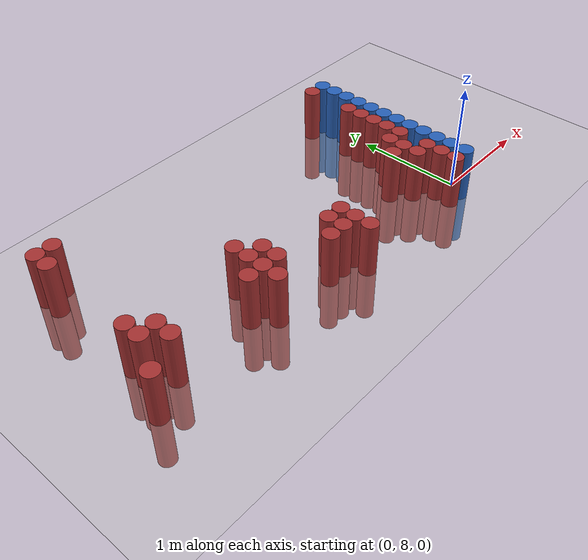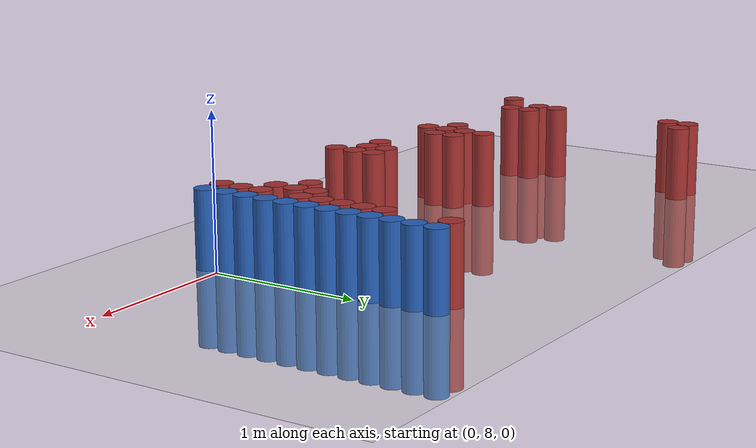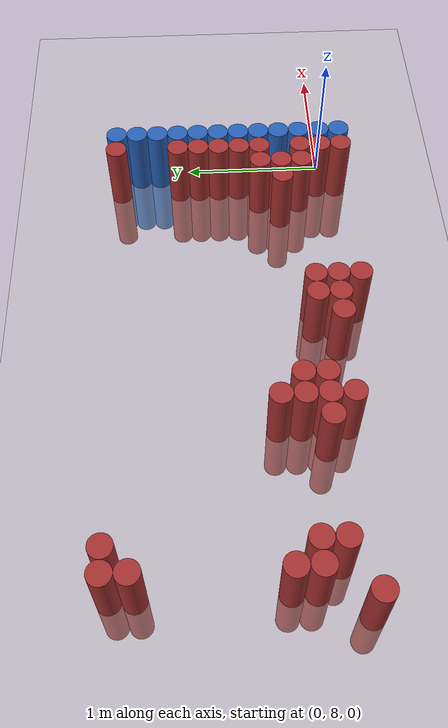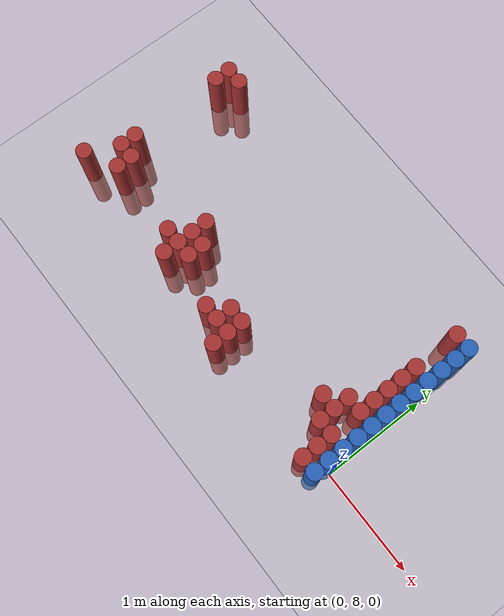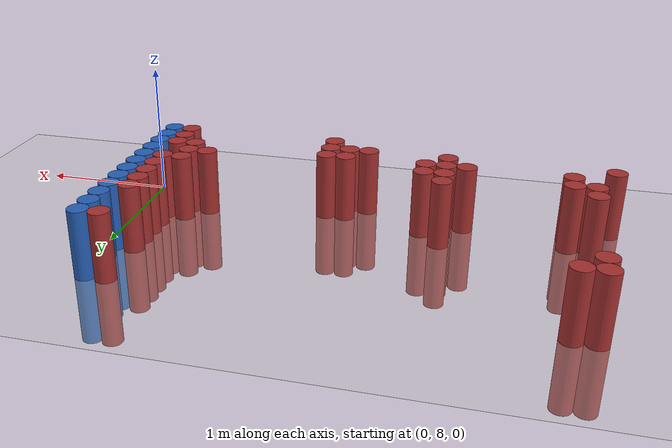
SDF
<sdf version="1.6">
 <world name="default">
  <model name="ground_plane">
   <static>1</static>
   <link name="link">
    <collision name="collision">
     <geometry><plane><normal>0 0 1</normal><size>100 100</size></plane></geometry>
     <surface><friction><ode><mu>100</mu><mu2>50</mu2></ode></friction></surface>
    </collision>
    <visual name="visual">
     <cast_shadows>0</cast_shadows>
     <geometry><plane><normal>0 0 1</normal><size>100 100</size></plane></geometry>
     <material>
      <script><uri>file://media/materials/scripts/gazebo.material</uri><name>Gazebo/Grey</name></script>
     </material>
    </visual>
   </link>
  </model>
  <model name="unit_cylinder_158">
   <static>1</static>
   <pose>-3.525000 8.025000 0.000000 0.000000 0.000000 0.000000</pose>
   <link name="link">
    <inertial>
     <mass>1</mass>
     <inertia><ixx>0.145833</ixx><ixy>0</ixy><ixz>0</ixz><iyy>0.145833</iyy><iyz>0</iyz><izz>0.125</izz></inertia>
    </inertial>
    <collision name="collision">
     <geometry><cylinder><radius>0.075000</radius><length>1</length></cylinder></geometry>
    </collision>
    <visual name="visual">
     <geometry><cylinder><radius>0.075000</radius><length>1</length></cylinder></geometry>
     <material>
      <ambient>0.648000 0.192000 0.192000 1</ambient>
      <diffuse>0.648000 0.192000 0.192000 1</diffuse>
     </material>
     <material>
      <script><name>Gazebo/Grey</name><uri>file://media/materials/scripts/gazebo.material</uri></script>
     </material>
    </visual>
   </link>
  </model>
  <model name="unit_cylinder_160">
   <static>1</static>
   <pose>-3.375000 8.325000 0.000000 0.000000 0.000000 0.000000</pose>
   <link name="link">
    <inertial>
     <mass>1</mass>
     <inertia><ixx>0.145833</ixx><ixy>0</ixy><ixz>0</ixz><iyy>0.145833</iyy><iyz>0</iyz><izz>0.125</izz></inertia>
    </inertial>
    <collision name="collision">
     <geometry><cylinder><radius>0.075000</radius><length>1</length></cylinder></geometry>
    </collision>
    <visual name="visual">
     <geometry><cylinder><radius>0.075000</radius><length>1</length></cylinder></geometry>
     <material>
      <ambient>0.648000 0.192000 0.192000 1</ambient>
      <diffuse>0.648000 0.192000 0.192000 1</diffuse>
     </material>
     <material>
      <script><name>Gazebo/Grey</name><uri>file://media/materials/scripts/gazebo.material</uri></script>
     </material>
    </visual>
   </link>
  </model>
  <model name="unit_cylinder_161">
   <static>1</static>
   <pose>-3.375000 8.475000 0.000000 0.000000 0.000000 0.000000</pose>
   <link name="link">
    <inertial>
     <mass>1</mass>
     <inertia><ixx>0.145833</ixx><ixy>0</ixy><ixz>0</ixz><iyy>0.145833</iyy><iyz>0</iyz><izz>0.125</izz></inertia>
    </inertial>
    <collision name="collision">
     <geometry><cylinder><radius>0.075000</radius><length>1</length></cylinder></geometry>
    </collision>
    <visual name="visual">
     <geometry><cylinder><radius>0.075000</radius><length>1</length></cylinder></geometry>
     <material>
      <ambient>0.648000 0.192000 0.192000 1</ambient>
      <diffuse>0.648000 0.192000 0.192000 1</diffuse>
     </material>
     <material>
      <script><name>Gazebo/Grey</name><uri>file://media/materials/scripts/gazebo.material</uri></script>
     </material>
    </visual>
   </link>
  </model>
  <model name="unit_cylinder_162">
   <static>1</static>
   <pose>-3.375000 9.375000 0.000000 0.000000 0.000000 0.000000</pose>
   <link name="link">
    <inertial>
     <mass>1</mass>
     <inertia><ixx>0.145833</ixx><ixy>0</ixy><ixz>0</ixz><iyy>0.145833</iyy><iyz>0</iyz><izz>0.125</izz></inertia>
    </inertial>
    <collision name="collision">
     <geometry><cylinder><radius>0.075000</radius><length>1</length></cylinder></geometry>
    </collision>
    <visual name="visual">
     <geometry><cylinder><radius>0.075000</radius><length>1</length></cylinder></geometry>
     <material>
      <ambient>0.648000 0.192000 0.192000 1</ambient>
      <diffuse>0.648000 0.192000 0.192000 1</diffuse>
     </material>
     <material>
      <script><name>Gazebo/Grey</name><uri>file://media/materials/scripts/gazebo.material</uri></script>
     </material>
    </visual>
   </link>
  </model>
  <model name="unit_cylinder_163">
   <static>1</static>
   <pose>-3.375000 9.525000 0.000000 0.000000 0.000000 0.000000</pose>
   <link name="link">
    <inertial>
     <mass>1</mass>
     <inertia><ixx>0.145833</ixx><ixy>0</ixy><ixz>0</ixz><iyy>0.145833</iyy><iyz>0</iyz><izz>0.125</izz></inertia>
    </inertial>
    <collision name="collision">
     <geometry><cylinder><radius>0.075000</radius><length>1</length></cylinder></geometry>
    </collision>
    <visual name="visual">
     <geometry><cylinder><radius>0.075000</radius><length>1</length></cylinder></geometry>
     <material>
      <ambient>0.648000 0.192000 0.192000 1</ambient>
      <diffuse>0.648000 0.192000 0.192000 1</diffuse>
     </material>
     <material>
      <script><name>Gazebo/Grey</name><uri>file://media/materials/scripts/gazebo.material</uri></script>
     </material>
    </visual>
   </link>
  </model>
  <model name="unit_cylinder_165">
   <static>1</static>
   <pose>-3.225000 8.175000 0.000000 0.000000 0.000000 0.000000</pose>
   <link name="link">
    <inertial>
     <mass>1</mass>
     <inertia><ixx>0.145833</ixx><ixy>0</ixy><ixz>0</ixz><iyy>0.145833</iyy><iyz>0</iyz><izz>0.125</izz></inertia>
    </inertial>
    <collision name="collision">
     <geometry><cylinder><radius>0.075000</radius><length>1</length></cylinder></geometry>
    </collision>
    <visual name="visual">
     <geometry><cylinder><radius>0.075000</radius><length>1</length></cylinder></geometry>
     <material>
      <ambient>0.648000 0.192000 0.192000 1</ambient>
      <diffuse>0.648000 0.192000 0.192000 1</diffuse>
     </material>
     <material>
      <script><name>Gazebo/Grey</name><uri>file://media/materials/scripts/gazebo.material</uri></script>
     </material>
    </visual>
   </link>
  </model>
  <model name="unit_cylinder_166">
   <static>1</static>
   <pose>-3.225000 8.325000 0.000000 0.000000 0.000000 0.000000</pose>
   <link name="link">
    <inertial>
     <mass>1</mass>
     <inertia><ixx>0.145833</ixx><ixy>0</ixy><ixz>0</ixz><iyy>0.145833</iyy><iyz>0</iyz><izz>0.125</izz></inertia>
    </inertial>
    <collision name="collision">
     <geometry><cylinder><radius>0.075000</radius><length>1</length></cylinder></geometry>
    </collision>
    <visual name="visual">
     <geometry><cylinder><radius>0.075000</radius><length>1</length></cylinder></geometry>
     <material>
      <ambient>0.648000 0.192000 0.192000 1</ambient>
      <diffuse>0.648000 0.192000 0.192000 1</diffuse>
     </material>
     <material>
      <script><name>Gazebo/Grey</name><uri>file://media/materials/scripts/gazebo.material</uri></script>
     </material>
    </visual>
   </link>
  </model>
  <model name="unit_cylinder_167">
   <static>1</static>
   <pose>-3.225000 9.525000 0.000000 0.000000 0.000000 0.000000</pose>
   <link name="link">
    <inertial>
     <mass>1</mass>
     <inertia><ixx>0.145833</ixx><ixy>0</ixy><ixz>0</ixz><iyy>0.145833</iyy><iyz>0</iyz><izz>0.125</izz></inertia>
    </inertial>
    <collision name="collision">
     <geometry><cylinder><radius>0.075000</radius><length>1</length></cylinder></geometry>
    </collision>
    <visual name="visual">
     <geometry><cylinder><radius>0.075000</radius><length>1</length></cylinder></geometry>
     <material>
      <ambient>0.648000 0.192000 0.192000 1</ambient>
      <diffuse>0.648000 0.192000 0.192000 1</diffuse>
     </material>
     <material>
      <script><name>Gazebo/Grey</name><uri>file://media/materials/scripts/gazebo.material</uri></script>
     </material>
    </visual>
   </link>
  </model>
  <model name="unit_cylinder_179">
   <static>1</static>
   <pose>-2.475000 8.175000 0.000000 0.000000 0.000000 0.000000</pose>
   <link name="link">
    <inertial>
     <mass>1</mass>
     <inertia><ixx>0.145833</ixx><ixy>0</ixy><ixz>0</ixz><iyy>0.145833</iyy><iyz>0</iyz><izz>0.125</izz></inertia>
    </inertial>
    <collision name="collision">
     <geometry><cylinder><radius>0.075000</radius><length>1</length></cylinder></geometry>
    </collision>
    <visual name="visual">
     <geometry><cylinder><radius>0.075000</radius><length>1</length></cylinder></geometry>
     <material>
      <ambient>0.648000 0.192000 0.192000 1</ambient>
      <diffuse>0.648000 0.192000 0.192000 1</diffuse>
     </material>
     <material>
      <script><name>Gazebo/Grey</name><uri>file://media/materials/scripts/gazebo.material</uri></script>
     </material>
    </visual>
   </link>
  </model>
  <model name="unit_cylinder_182">
   <static>1</static>
   <pose>-2.325000 8.025000 0.000000 0.000000 0.000000 0.000000</pose>
   <link name="link">
    <inertial>
     <mass>1</mass>
     <inertia><ixx>0.145833</ixx><ixy>0</ixy><ixz>0</ixz><iyy>0.145833</iyy><iyz>0</iyz><izz>0.125</izz></inertia>
    </inertial>
    <collision name="collision">
     <geometry><cylinder><radius>0.075000</radius><length>1</length></cylinder></geometry>
    </collision>
    <visual name="visual">
     <geometry><cylinder><radius>0.075000</radius><length>1</length></cylinder></geometry>
     <material>
      <ambient>0.648000 0.192000 0.192000 1</ambient>
      <diffuse>0.648000 0.192000 0.192000 1</diffuse>
     </material>
     <material>
      <script><name>Gazebo/Grey</name><uri>file://media/materials/scripts/gazebo.material</uri></script>
     </material>
    </visual>
   </link>
  </model>
  <model name="unit_cylinder_183">
   <static>1</static>
   <pose>-2.325000 8.175000 0.000000 0.000000 0.000000 0.000000</pose>
   <link name="link">
    <inertial>
     <mass>1</mass>
     <inertia><ixx>0.145833</ixx><ixy>0</ixy><ixz>0</ixz><iyy>0.145833</iyy><iyz>0</iyz><izz>0.125</izz></inertia>
    </inertial>
    <collision name="collision">
     <geometry><cylinder><radius>0.075000</radius><length>1</length></cylinder></geometry>
    </collision>
    <visual name="visual">
     <geometry><cylinder><radius>0.075000</radius><length>1</length></cylinder></geometry>
     <material>
      <ambient>0.648000 0.192000 0.192000 1</ambient>
      <diffuse>0.648000 0.192000 0.192000 1</diffuse>
     </material>
     <material>
      <script><name>Gazebo/Grey</name><uri>file://media/materials/scripts/gazebo.material</uri></script>
     </material>
    </visual>
   </link>
  </model>
  <model name="unit_cylinder_184">
   <static>1</static>
   <pose>-2.325000 8.325000 0.000000 0.000000 0.000000 0.000000</pose>
   <link name="link">
    <inertial>
     <mass>1</mass>
     <inertia><ixx>0.145833</ixx><ixy>0</ixy><ixz>0</ixz><iyy>0.145833</iyy><iyz>0</iyz><izz>0.125</izz></inertia>
    </inertial>
    <collision name="collision">
     <geometry><cylinder><radius>0.075000</radius><length>1</length></cylinder></geometry>
    </collision>
    <visual name="visual">
     <geometry><cylinder><radius>0.075000</radius><length>1</length></cylinder></geometry>
     <material>
      <ambient>0.648000 0.192000 0.192000 1</ambient>
      <diffuse>0.648000 0.192000 0.192000 1</diffuse>
     </material>
     <material>
      <script><name>Gazebo/Grey</name><uri>file://media/materials/scripts/gazebo.material</uri></script>
     </material>
    </visual>
   </link>
  </model>
  <model name="unit_cylinder_185">
   <static>1</static>
   <pose>-2.325000 8.475000 0.000000 0.000000 0.000000 0.000000</pose>
   <link name="link">
    <inertial>
     <mass>1</mass>
     <inertia><ixx>0.145833</ixx><ixy>0</ixy><ixz>0</ixz><iyy>0.145833</iyy><iyz>0</iyz><izz>0.125</izz></inertia>
    </inertial>
    <collision name="collision">
     <geometry><cylinder><radius>0.075000</radius><length>1</length></cylinder></geometry>
    </collision>
    <visual name="visual">
     <geometry><cylinder><radius>0.075000</radius><length>1</length></cylinder></geometry>
     <material>
      <ambient>0.648000 0.192000 0.192000 1</ambient>
      <diffuse>0.648000 0.192000 0.192000 1</diffuse>
     </material>
     <material>
      <script><name>Gazebo/Grey</name><uri>file://media/materials/scripts/gazebo.material</uri></script>
     </material>
    </visual>
   </link>
  </model>
  <model name="unit_cylinder_188">
   <static>1</static>
   <pose>-2.175000 8.175000 0.000000 0.000000 0.000000 0.000000</pose>
   <link name="link">
    <inertial>
     <mass>1</mass>
     <inertia><ixx>0.145833</ixx><ixy>0</ixy><ixz>0</ixz><iyy>0.145833</iyy><iyz>0</iyz><izz>0.125</izz></inertia>
    </inertial>
    <collision name="collision">
     <geometry><cylinder><radius>0.075000</radius><length>1</length></cylinder></geometry>
    </collision>
    <visual name="visual">
     <geometry><cylinder><radius>0.075000</radius><length>1</length></cylinder></geometry>
     <material>
      <ambient>0.648000 0.192000 0.192000 1</ambient>
      <diffuse>0.648000 0.192000 0.192000 1</diffuse>
     </material>
     <material>
      <script><name>Gazebo/Grey</name><uri>file://media/materials/scripts/gazebo.material</uri></script>
     </material>
    </visual>
   </link>
  </model>
  <model name="unit_cylinder_189">
   <static>1</static>
   <pose>-2.175000 8.325000 0.000000 0.000000 0.000000 0.000000</pose>
   <link name="link">
    <inertial>
     <mass>1</mass>
     <inertia><ixx>0.145833</ixx><ixy>0</ixy><ixz>0</ixz><iyy>0.145833</iyy><iyz>0</iyz><izz>0.125</izz></inertia>
    </inertial>
    <collision name="collision">
     <geometry><cylinder><radius>0.075000</radius><length>1</length></cylinder></geometry>
    </collision>
    <visual name="visual">
     <geometry><cylinder><radius>0.075000</radius><length>1</length></cylinder></geometry>
     <material>
      <ambient>0.648000 0.192000 0.192000 1</ambient>
      <diffuse>0.648000 0.192000 0.192000 1</diffuse>
     </material>
     <material>
      <script><name>Gazebo/Grey</name><uri>file://media/materials/scripts/gazebo.material</uri></script>
     </material>
    </visual>
   </link>
  </model>
  <model name="unit_cylinder_203">
   <static>1</static>
   <pose>-1.725000 8.025000 0.000000 0.000000 0.000000 0.000000</pose>
   <link name="link">
    <inertial>
     <mass>1</mass>
     <inertia><ixx>0.145833</ixx><ixy>0</ixy><ixz>0</ixz><iyy>0.145833</iyy><iyz>0</iyz><izz>0.125</izz></inertia>
    </inertial>
    <collision name="collision">
     <geometry><cylinder><radius>0.075000</radius><length>1</length></cylinder></geometry>
    </collision>
    <visual name="visual">
     <geometry><cylinder><radius>0.075000</radius><length>1</length></cylinder></geometry>
     <material>
      <ambient>0.648000 0.192000 0.192000 1</ambient>
      <diffuse>0.648000 0.192000 0.192000 1</diffuse>
     </material>
     <material>
      <script><name>Gazebo/Grey</name><uri>file://media/materials/scripts/gazebo.material</uri></script>
     </material>
    </visual>
   </link>
  </model>
  <model name="unit_cylinder_207">
   <static>1</static>
   <pose>-1.575000 8.025000 0.000000 0.000000 0.000000 0.000000</pose>
   <link name="link">
    <inertial>
     <mass>1</mass>
     <inertia><ixx>0.145833</ixx><ixy>0</ixy><ixz>0</ixz><iyy>0.145833</iyy><iyz>0</iyz><izz>0.125</izz></inertia>
    </inertial>
    <collision name="collision">
     <geometry><cylinder><radius>0.075000</radius><length>1</length></cylinder></geometry>
    </collision>
    <visual name="visual">
     <geometry><cylinder><radius>0.075000</radius><length>1</length></cylinder></geometry>
     <material>
      <ambient>0.648000 0.192000 0.192000 1</ambient>
      <diffuse>0.648000 0.192000 0.192000 1</diffuse>
     </material>
     <material>
      <script><name>Gazebo/Grey</name><uri>file://media/materials/scripts/gazebo.material</uri></script>
     </material>
    </visual>
   </link>
  </model>
  <model name="unit_cylinder_208">
   <static>1</static>
   <pose>-1.575000 8.175000 0.000000 0.000000 0.000000 0.000000</pose>
   <link name="link">
    <inertial>
     <mass>1</mass>
     <inertia><ixx>0.145833</ixx><ixy>0</ixy><ixz>0</ixz><iyy>0.145833</iyy><iyz>0</iyz><izz>0.125</izz></inertia>
    </inertial>
    <collision name="collision">
     <geometry><cylinder><radius>0.075000</radius><length>1</length></cylinder></geometry>
    </collision>
    <visual name="visual">
     <geometry><cylinder><radius>0.075000</radius><length>1</length></cylinder></geometry>
     <material>
      <ambient>0.648000 0.192000 0.192000 1</ambient>
      <diffuse>0.648000 0.192000 0.192000 1</diffuse>
     </material>
     <material>
      <script><name>Gazebo/Grey</name><uri>file://media/materials/scripts/gazebo.material</uri></script>
     </material>
    </visual>
   </link>
  </model>
  <model name="unit_cylinder_209">
   <static>1</static>
   <pose>-1.425000 7.875000 0.000000 0.000000 0.000000 0.000000</pose>
   <link name="link">
    <inertial>
     <mass>1</mass>
     <inertia><ixx>0.145833</ixx><ixy>0</ixy><ixz>0</ixz><iyy>0.145833</iyy><iyz>0</iyz><izz>0.125</izz></inertia>
    </inertial>
    <collision name="collision">
     <geometry><cylinder><radius>0.075000</radius><length>1</length></cylinder></geometry>
    </collision>
    <visual name="visual">
     <geometry><cylinder><radius>0.075000</radius><length>1</length></cylinder></geometry>
     <material>
      <ambient>0.648000 0.192000 0.192000 1</ambient>
      <diffuse>0.648000 0.192000 0.192000 1</diffuse>
     </material>
     <material>
      <script><name>Gazebo/Grey</name><uri>file://media/materials/scripts/gazebo.material</uri></script>
     </material>
    </visual>
   </link>
  </model>
  <model name="unit_cylinder_210">
   <static>1</static>
   <pose>-1.425000 8.025000 0.000000 0.000000 0.000000 0.000000</pose>
   <link name="link">
    <inertial>
     <mass>1</mass>
     <inertia><ixx>0.145833</ixx><ixy>0</ixy><ixz>0</ixz><iyy>0.145833</iyy><iyz>0</iyz><izz>0.125</izz></inertia>
    </inertial>
    <collision name="collision">
     <geometry><cylinder><radius>0.075000</radius><length>1</length></cylinder></geometry>
    </collision>
    <visual name="visual">
     <geometry><cylinder><radius>0.075000</radius><length>1</length></cylinder></geometry>
     <material>
      <ambient>0.648000 0.192000 0.192000 1</ambient>
      <diffuse>0.648000 0.192000 0.192000 1</diffuse>
     </material>
     <material>
      <script><name>Gazebo/Grey</name><uri>file://media/materials/scripts/gazebo.material</uri></script>
     </material>
    </visual>
   </link>
  </model>
  <model name="unit_cylinder_211">
   <static>1</static>
   <pose>-1.425000 8.175000 0.000000 0.000000 0.000000 0.000000</pose>
   <link name="link">
    <inertial>
     <mass>1</mass>
     <inertia><ixx>0.145833</ixx><ixy>0</ixy><ixz>0</ixz><iyy>0.145833</iyy><iyz>0</iyz><izz>0.125</izz></inertia>
    </inertial>
    <collision name="collision">
     <geometry><cylinder><radius>0.075000</radius><length>1</length></cylinder></geometry>
    </collision>
    <visual name="visual">
     <geometry><cylinder><radius>0.075000</radius><length>1</length></cylinder></geometry>
     <material>
      <ambient>0.648000 0.192000 0.192000 1</ambient>
      <diffuse>0.648000 0.192000 0.192000 1</diffuse>
     </material>
     <material>
      <script><name>Gazebo/Grey</name><uri>file://media/materials/scripts/gazebo.material</uri></script>
     </material>
    </visual>
   </link>
  </model>
  <model name="unit_cylinder_222">
   <static>1</static>
   <pose>-0.525000 8.325000 0.000000 0.000000 0.000000 0.000000</pose>
   <link name="link">
    <inertial>
     <mass>1</mass>
     <inertia><ixx>0.145833</ixx><ixy>0</ixy><ixz>0</ixz><iyy>0.145833</iyy><iyz>0</iyz><izz>0.125</izz></inertia>
    </inertial>
    <collision name="collision">
     <geometry><cylinder><radius>0.075000</radius><length>1</length></cylinder></geometry>
    </collision>
    <visual name="visual">
     <geometry><cylinder><radius>0.075000</radius><length>1</length></cylinder></geometry>
     <material>
      <ambient>0.648000 0.192000 0.192000 1</ambient>
      <diffuse>0.648000 0.192000 0.192000 1</diffuse>
     </material>
     <material>
      <script><name>Gazebo/Grey</name><uri>file://media/materials/scripts/gazebo.material</uri></script>
     </material>
    </visual>
   </link>
  </model>
  <model name="unit_cylinder_230">
   <static>1</static>
   <pose>-0.375000 8.175000 0.000000 0.000000 0.000000 0.000000</pose>
   <link name="link">
    <inertial>
     <mass>1</mass>
     <inertia><ixx>0.145833</ixx><ixy>0</ixy><ixz>0</ixz><iyy>0.145833</iyy><iyz>0</iyz><izz>0.125</izz></inertia>
    </inertial>
    <collision name="collision">
     <geometry><cylinder><radius>0.075000</radius><length>1</length></cylinder></geometry>
    </collision>
    <visual name="visual">
     <geometry><cylinder><radius>0.075000</radius><length>1</length></cylinder></geometry>
     <material>
      <ambient>0.648000 0.192000 0.192000 1</ambient>
      <diffuse>0.648000 0.192000 0.192000 1</diffuse>
     </material>
     <material>
      <script><name>Gazebo/Grey</name><uri>file://media/materials/scripts/gazebo.material</uri></script>
     </material>
    </visual>
   </link>
  </model>
  <model name="unit_cylinder_231">
   <static>1</static>
   <pose>-0.375000 8.325000 0.000000 0.000000 0.000000 0.000000</pose>
   <link name="link">
    <inertial>
     <mass>1</mass>
     <inertia><ixx>0.145833</ixx><ixy>0</ixy><ixz>0</ixz><iyy>0.145833</iyy><iyz>0</iyz><izz>0.125</izz></inertia>
    </inertial>
    <collision name="collision">
     <geometry><cylinder><radius>0.075000</radius><length>1</length></cylinder></geometry>
    </collision>
    <visual name="visual">
     <geometry><cylinder><radius>0.075000</radius><length>1</length></cylinder></geometry>
     <material>
      <ambient>0.648000 0.192000 0.192000 1</ambient>
      <diffuse>0.648000 0.192000 0.192000 1</diffuse>
     </material>
     <material>
      <script><name>Gazebo/Grey</name><uri>file://media/materials/scripts/gazebo.material</uri></script>
     </material>
    </visual>
   </link>
  </model>
  <model name="unit_cylinder_232">
   <static>1</static>
   <pose>-0.375000 8.475000 0.000000 0.000000 0.000000 0.000000</pose>
   <link name="link">
    <inertial>
     <mass>1</mass>
     <inertia><ixx>0.145833</ixx><ixy>0</ixy><ixz>0</ixz><iyy>0.145833</iyy><iyz>0</iyz><izz>0.125</izz></inertia>
    </inertial>
    <collision name="collision">
     <geometry><cylinder><radius>0.075000</radius><length>1</length></cylinder></geometry>
    </collision>
    <visual name="visual">
     <geometry><cylinder><radius>0.075000</radius><length>1</length></cylinder></geometry>
     <material>
      <ambient>0.648000 0.192000 0.192000 1</ambient>
      <diffuse>0.648000 0.192000 0.192000 1</diffuse>
     </material>
     <material>
      <script><name>Gazebo/Grey</name><uri>file://media/materials/scripts/gazebo.material</uri></script>
     </material>
    </visual>
   </link>
  </model>
  <model name="unit_cylinder_238">
   <static>1</static>
   <pose>-0.225000 7.875000 0.000000 0.000000 0.000000 0.000000</pose>
   <link name="link">
    <inertial>
     <mass>1</mass>
     <inertia><ixx>0.145833</ixx><ixy>0</ixy><ixz>0</ixz><iyy>0.145833</iyy><iyz>0</iyz><izz>0.125</izz></inertia>
    </inertial>
    <collision name="collision">
     <geometry><cylinder><radius>0.075000</radius><length>1</length></cylinder></geometry>
    </collision>
    <visual name="visual">
     <geometry><cylinder><radius>0.075000</radius><length>1</length></cylinder></geometry>
     <material>
      <ambient>0.648000 0.192000 0.192000 1</ambient>
      <diffuse>0.648000 0.192000 0.192000 1</diffuse>
     </material>
     <material>
      <script><name>Gazebo/Grey</name><uri>file://media/materials/scripts/gazebo.material</uri></script>
     </material>
    </visual>
   </link>
  </model>
  <model name="unit_cylinder_239">
   <static>1</static>
   <pose>-0.225000 8.025000 0.000000 0.000000 0.000000 0.000000</pose>
   <link name="link">
    <inertial>
     <mass>1</mass>
     <inertia><ixx>0.145833</ixx><ixy>0</ixy><ixz>0</ixz><iyy>0.145833</iyy><iyz>0</iyz><izz>0.125</izz></inertia>
    </inertial>
    <collision name="collision">
     <geometry><cylinder><radius>0.075000</radius><length>1</length></cylinder></geometry>
    </collision>
    <visual name="visual">
     <geometry><cylinder><radius>0.075000</radius><length>1</length></cylinder></geometry>
     <material>
      <ambient>0.648000 0.192000 0.192000 1</ambient>
      <diffuse>0.648000 0.192000 0.192000 1</diffuse>
     </material>
     <material>
      <script><name>Gazebo/Grey</name><uri>file://media/materials/scripts/gazebo.material</uri></script>
     </material>
    </visual>
   </link>
  </model>
  <model name="unit_cylinder_240">
   <static>1</static>
   <pose>-0.225000 8.175000 0.000000 0.000000 0.000000 0.000000</pose>
   <link name="link">
    <inertial>
     <mass>1</mass>
     <inertia><ixx>0.145833</ixx><ixy>0</ixy><ixz>0</ixz><iyy>0.145833</iyy><iyz>0</iyz><izz>0.125</izz></inertia>
    </inertial>
    <collision name="collision">
     <geometry><cylinder><radius>0.075000</radius><length>1</length></cylinder></geometry>
    </collision>
    <visual name="visual">
     <geometry><cylinder><radius>0.075000</radius><length>1</length></cylinder></geometry>
     <material>
      <ambient>0.648000 0.192000 0.192000 1</ambient>
      <diffuse>0.648000 0.192000 0.192000 1</diffuse>
     </material>
     <material>
      <script><name>Gazebo/Grey</name><uri>file://media/materials/scripts/gazebo.material</uri></script>
     </material>
    </visual>
   </link>
  </model>
  <model name="unit_cylinder_241">
   <static>1</static>
   <pose>-0.225000 8.475000 0.000000 0.000000 0.000000 0.000000</pose>
   <link name="link">
    <inertial>
     <mass>1</mass>
     <inertia><ixx>0.145833</ixx><ixy>0</ixy><ixz>0</ixz><iyy>0.145833</iyy><iyz>0</iyz><izz>0.125</izz></inertia>
    </inertial>
    <collision name="collision">
     <geometry><cylinder><radius>0.075000</radius><length>1</length></cylinder></geometry>
    </collision>
    <visual name="visual">
     <geometry><cylinder><radius>0.075000</radius><length>1</length></cylinder></geometry>
     <material>
      <ambient>0.648000 0.192000 0.192000 1</ambient>
      <diffuse>0.648000 0.192000 0.192000 1</diffuse>
     </material>
     <material>
      <script><name>Gazebo/Grey</name><uri>file://media/materials/scripts/gazebo.material</uri></script>
     </material>
    </visual>
   </link>
  </model>
  <model name="unit_cylinder_242">
   <static>1</static>
   <pose>-0.225000 8.625000 0.000000 0.000000 0.000000 0.000000</pose>
   <link name="link">
    <inertial>
     <mass>1</mass>
     <inertia><ixx>0.145833</ixx><ixy>0</ixy><ixz>0</ixz><iyy>0.145833</iyy><iyz>0</iyz><izz>0.125</izz></inertia>
    </inertial>
    <collision name="collision">
     <geometry><cylinder><radius>0.075000</radius><length>1</length></cylinder></geometry>
    </collision>
    <visual name="visual">
     <geometry><cylinder><radius>0.075000</radius><length>1</length></cylinder></geometry>
     <material>
      <ambient>0.648000 0.192000 0.192000 1</ambient>
      <diffuse>0.648000 0.192000 0.192000 1</diffuse>
     </material>
     <material>
      <script><name>Gazebo/Grey</name><uri>file://media/materials/scripts/gazebo.material</uri></script>
     </material>
    </visual>
   </link>
  </model>
  <model name="unit_cylinder_243">
   <static>1</static>
   <pose>-0.225000 8.775000 0.000000 0.000000 0.000000 0.000000</pose>
   <link name="link">
    <inertial>
     <mass>1</mass>
     <inertia><ixx>0.145833</ixx><ixy>0</ixy><ixz>0</ixz><iyy>0.145833</iyy><iyz>0</iyz><izz>0.125</izz></inertia>
    </inertial>
    <collision name="collision">
     <geometry><cylinder><radius>0.075000</radius><length>1</length></cylinder></geometry>
    </collision>
    <visual name="visual">
     <geometry><cylinder><radius>0.075000</radius><length>1</length></cylinder></geometry>
     <material>
      <ambient>0.648000 0.192000 0.192000 1</ambient>
      <diffuse>0.648000 0.192000 0.192000 1</diffuse>
     </material>
     <material>
      <script><name>Gazebo/Grey</name><uri>file://media/materials/scripts/gazebo.material</uri></script>
     </material>
    </visual>
   </link>
  </model>
  <model name="unit_cylinder_244">
   <static>1</static>
   <pose>-0.225000 8.925000 0.000000 0.000000 0.000000 0.000000</pose>
   <link name="link">
    <inertial>
     <mass>1</mass>
     <inertia><ixx>0.145833</ixx><ixy>0</ixy><ixz>0</ixz><iyy>0.145833</iyy><iyz>0</iyz><izz>0.125</izz></inertia>
    </inertial>
    <collision name="collision">
     <geometry><cylinder><radius>0.075000</radius><length>1</length></cylinder></geometry>
    </collision>
    <visual name="visual">
     <geometry><cylinder><radius>0.075000</radius><length>1</length></cylinder></geometry>
     <material>
      <ambient>0.648000 0.192000 0.192000 1</ambient>
      <diffuse>0.648000 0.192000 0.192000 1</diffuse>
     </material>
     <material>
      <script><name>Gazebo/Grey</name><uri>file://media/materials/scripts/gazebo.material</uri></script>
     </material>
    </visual>
   </link>
  </model>
  <model name="unit_cylinder_245">
   <static>1</static>
   <pose>-0.225000 9.075000 0.000000 0.000000 0.000000 0.000000</pose>
   <link name="link">
    <inertial>
     <mass>1</mass>
     <inertia><ixx>0.145833</ixx><ixy>0</ixy><ixz>0</ixz><iyy>0.145833</iyy><iyz>0</iyz><izz>0.125</izz></inertia>
    </inertial>
    <collision name="collision">
     <geometry><cylinder><radius>0.075000</radius><length>1</length></cylinder></geometry>
    </collision>
    <visual name="visual">
     <geometry><cylinder><radius>0.075000</radius><length>1</length></cylinder></geometry>
     <material>
      <ambient>0.648000 0.192000 0.192000 1</ambient>
      <diffuse>0.648000 0.192000 0.192000 1</diffuse>
     </material>
     <material>
      <script><name>Gazebo/Grey</name><uri>file://media/materials/scripts/gazebo.material</uri></script>
     </material>
    </visual>
   </link>
  </model>
  <model name="unit_cylinder_246">
   <static>1</static>
   <pose>-0.225000 9.525000 0.000000 0.000000 0.000000 0.000000</pose>
   <link name="link">
    <inertial>
     <mass>1</mass>
     <inertia><ixx>0.145833</ixx><ixy>0</ixy><ixz>0</ixz><iyy>0.145833</iyy><iyz>0</iyz><izz>0.125</izz></inertia>
    </inertial>
    <collision name="collision">
     <geometry><cylinder><radius>0.075000</radius><length>1</length></cylinder></geometry>
    </collision>
    <visual name="visual">
     <geometry><cylinder><radius>0.075000</radius><length>1</length></cylinder></geometry>
     <material>
      <ambient>0.648000 0.192000 0.192000 1</ambient>
      <diffuse>0.648000 0.192000 0.192000 1</diffuse>
     </material>
     <material>
      <script><name>Gazebo/Grey</name><uri>file://media/materials/scripts/gazebo.material</uri></script>
     </material>
    </visual>
   </link>
  </model>
  <model name="unit_cylinder_265">
   <static>1</static>
   <pose>-0.075000 7.875000 0.000000 0.000000 0.000000 0.000000</pose>
   <link name="link">
    <inertial>
     <mass>1</mass>
     <inertia><ixx>0.145833</ixx><ixy>0</ixy><ixz>0</ixz><iyy>0.145833</iyy><iyz>0</iyz><izz>0.125</izz></inertia>
    </inertial>
    <collision name="collision">
     <geometry><cylinder><radius>0.075000</radius><length>1</length></cylinder></geometry>
    </collision>
    <visual name="visual">
     <geometry><cylinder><radius>0.075000</radius><length>1</length></cylinder></geometry>
     <material>
      <ambient>0.152000 0.379000 0.720000 1</ambient>
      <diffuse>0.152000 0.379000 0.720000 1</diffuse>
     </material>
     <material>
      <script><name>Gazebo/Grey</name><uri>file://media/materials/scripts/gazebo.material</uri></script>
     </material>
    </visual>
   </link>
  </model>
  <model name="unit_cylinder_266">
   <static>1</static>
   <pose>-0.075000 8.025000 0.000000 0.000000 0.000000 0.000000</pose>
   <link name="link">
    <inertial>
     <mass>1</mass>
     <inertia><ixx>0.145833</ixx><ixy>0</ixy><ixz>0</ixz><iyy>0.145833</iyy><iyz>0</iyz><izz>0.125</izz></inertia>
    </inertial>
    <collision name="collision">
     <geometry><cylinder><radius>0.075000</radius><length>1</length></cylinder></geometry>
    </collision>
    <visual name="visual">
     <geometry><cylinder><radius>0.075000</radius><length>1</length></cylinder></geometry>
     <material>
      <ambient>0.152000 0.379000 0.720000 1</ambient>
      <diffuse>0.152000 0.379000 0.720000 1</diffuse>
     </material>
     <material>
      <script><name>Gazebo/Grey</name><uri>file://media/materials/scripts/gazebo.material</uri></script>
     </material>
    </visual>
   </link>
  </model>
  <model name="unit_cylinder_267">
   <static>1</static>
   <pose>-0.075000 8.175000 0.000000 0.000000 0.000000 0.000000</pose>
   <link name="link">
    <inertial>
     <mass>1</mass>
     <inertia><ixx>0.145833</ixx><ixy>0</ixy><ixz>0</ixz><iyy>0.145833</iyy><iyz>0</iyz><izz>0.125</izz></inertia>
    </inertial>
    <collision name="collision">
     <geometry><cylinder><radius>0.075000</radius><length>1</length></cylinder></geometry>
    </collision>
    <visual name="visual">
     <geometry><cylinder><radius>0.075000</radius><length>1</length></cylinder></geometry>
     <material>
      <ambient>0.152000 0.379000 0.720000 1</ambient>
      <diffuse>0.152000 0.379000 0.720000 1</diffuse>
     </material>
     <material>
      <script><name>Gazebo/Grey</name><uri>file://media/materials/scripts/gazebo.material</uri></script>
     </material>
    </visual>
   </link>
  </model>
  <model name="unit_cylinder_268">
   <static>1</static>
   <pose>-0.075000 8.325000 0.000000 0.000000 0.000000 0.000000</pose>
   <link name="link">
    <inertial>
     <mass>1</mass>
     <inertia><ixx>0.145833</ixx><ixy>0</ixy><ixz>0</ixz><iyy>0.145833</iyy><iyz>0</iyz><izz>0.125</izz></inertia>
    </inertial>
    <collision name="collision">
     <geometry><cylinder><radius>0.075000</radius><length>1</length></cylinder></geometry>
    </collision>
    <visual name="visual">
     <geometry><cylinder><radius>0.075000</radius><length>1</length></cylinder></geometry>
     <material>
      <ambient>0.152000 0.379000 0.720000 1</ambient>
      <diffuse>0.152000 0.379000 0.720000 1</diffuse>
     </material>
     <material>
      <script><name>Gazebo/Grey</name><uri>file://media/materials/scripts/gazebo.material</uri></script>
     </material>
    </visual>
   </link>
  </model>
  <model name="unit_cylinder_269">
   <static>1</static>
   <pose>-0.075000 8.475000 0.000000 0.000000 0.000000 0.000000</pose>
   <link name="link">
    <inertial>
     <mass>1</mass>
     <inertia><ixx>0.145833</ixx><ixy>0</ixy><ixz>0</ixz><iyy>0.145833</iyy><iyz>0</iyz><izz>0.125</izz></inertia>
    </inertial>
    <collision name="collision">
     <geometry><cylinder><radius>0.075000</radius><length>1</length></cylinder></geometry>
    </collision>
    <visual name="visual">
     <geometry><cylinder><radius>0.075000</radius><length>1</length></cylinder></geometry>
     <material>
      <ambient>0.152000 0.379000 0.720000 1</ambient>
      <diffuse>0.152000 0.379000 0.720000 1</diffuse>
     </material>
     <material>
      <script><name>Gazebo/Grey</name><uri>file://media/materials/scripts/gazebo.material</uri></script>
     </material>
    </visual>
   </link>
  </model>
  <model name="unit_cylinder_270">
   <static>1</static>
   <pose>-0.075000 8.625000 0.000000 0.000000 0.000000 0.000000</pose>
   <link name="link">
    <inertial>
     <mass>1</mass>
     <inertia><ixx>0.145833</ixx><ixy>0</ixy><ixz>0</ixz><iyy>0.145833</iyy><iyz>0</iyz><izz>0.125</izz></inertia>
    </inertial>
    <collision name="collision">
     <geometry><cylinder><radius>0.075000</radius><length>1</length></cylinder></geometry>
    </collision>
    <visual name="visual">
     <geometry><cylinder><radius>0.075000</radius><length>1</length></cylinder></geometry>
     <material>
      <ambient>0.152000 0.379000 0.720000 1</ambient>
      <diffuse>0.152000 0.379000 0.720000 1</diffuse>
     </material>
     <material>
      <script><name>Gazebo/Grey</name><uri>file://media/materials/scripts/gazebo.material</uri></script>
     </material>
    </visual>
   </link>
  </model>
  <model name="unit_cylinder_271">
   <static>1</static>
   <pose>-0.075000 8.775000 0.000000 0.000000 0.000000 0.000000</pose>
   <link name="link">
    <inertial>
     <mass>1</mass>
     <inertia><ixx>0.145833</ixx><ixy>0</ixy><ixz>0</ixz><iyy>0.145833</iyy><iyz>0</iyz><izz>0.125</izz></inertia>
    </inertial>
    <collision name="collision">
     <geometry><cylinder><radius>0.075000</radius><length>1</length></cylinder></geometry>
    </collision>
    <visual name="visual">
     <geometry><cylinder><radius>0.075000</radius><length>1</length></cylinder></geometry>
     <material>
      <ambient>0.152000 0.379000 0.720000 1</ambient>
      <diffuse>0.152000 0.379000 0.720000 1</diffuse>
     </material>
     <material>
      <script><name>Gazebo/Grey</name><uri>file://media/materials/scripts/gazebo.material</uri></script>
     </material>
    </visual>
   </link>
  </model>
  <model name="unit_cylinder_272">
   <static>1</static>
   <pose>-0.075000 8.925000 0.000000 0.000000 0.000000 0.000000</pose>
   <link name="link">
    <inertial>
     <mass>1</mass>
     <inertia><ixx>0.145833</ixx><ixy>0</ixy><ixz>0</ixz><iyy>0.145833</iyy><iyz>0</iyz><izz>0.125</izz></inertia>
    </inertial>
    <collision name="collision">
     <geometry><cylinder><radius>0.075000</radius><length>1</length></cylinder></geometry>
    </collision>
    <visual name="visual">
     <geometry><cylinder><radius>0.075000</radius><length>1</length></cylinder></geometry>
     <material>
      <ambient>0.152000 0.379000 0.720000 1</ambient>
      <diffuse>0.152000 0.379000 0.720000 1</diffuse>
     </material>
     <material>
      <script><name>Gazebo/Grey</name><uri>file://media/materials/scripts/gazebo.material</uri></script>
     </material>
    </visual>
   </link>
  </model>
  <model name="unit_cylinder_273">
   <static>1</static>
   <pose>-0.075000 9.075000 0.000000 0.000000 0.000000 0.000000</pose>
   <link name="link">
    <inertial>
     <mass>1</mass>
     <inertia><ixx>0.145833</ixx><ixy>0</ixy><ixz>0</ixz><iyy>0.145833</iyy><iyz>0</iyz><izz>0.125</izz></inertia>
    </inertial>
    <collision name="collision">
     <geometry><cylinder><radius>0.075000</radius><length>1</length></cylinder></geometry>
    </collision>
    <visual name="visual">
     <geometry><cylinder><radius>0.075000</radius><length>1</length></cylinder></geometry>
     <material>
      <ambient>0.152000 0.379000 0.720000 1</ambient>
      <diffuse>0.152000 0.379000 0.720000 1</diffuse>
     </material>
     <material>
      <script><name>Gazebo/Grey</name><uri>file://media/materials/scripts/gazebo.material</uri></script>
     </material>
    </visual>
   </link>
  </model>
  <model name="unit_cylinder_274">
   <static>1</static>
   <pose>-0.075000 9.225000 0.000000 0.000000 0.000000 0.000000</pose>
   <link name="link">
    <inertial>
     <mass>1</mass>
     <inertia><ixx>0.145833</ixx><ixy>0</ixy><ixz>0</ixz><iyy>0.145833</iyy><iyz>0</iyz><izz>0.125</izz></inertia>
    </inertial>
    <collision name="collision">
     <geometry><cylinder><radius>0.075000</radius><length>1</length></cylinder></geometry>
    </collision>
    <visual name="visual">
     <geometry><cylinder><radius>0.075000</radius><length>1</length></cylinder></geometry>
     <material>
      <ambient>0.152000 0.379000 0.720000 1</ambient>
      <diffuse>0.152000 0.379000 0.720000 1</diffuse>
     </material>
     <material>
      <script><name>Gazebo/Grey</name><uri>file://media/materials/scripts/gazebo.material</uri></script>
     </material>
    </visual>
   </link>
  </model>
  <model name="unit_cylinder_275">
   <static>1</static>
   <pose>-0.075000 9.375000 0.000000 0.000000 0.000000 0.000000</pose>
   <link name="link">
    <inertial>
     <mass>1</mass>
     <inertia><ixx>0.145833</ixx><ixy>0</ixy><ixz>0</ixz><iyy>0.145833</iyy><iyz>0</iyz><izz>0.125</izz></inertia>
    </inertial>
    <collision name="collision">
     <geometry><cylinder><radius>0.075000</radius><length>1</length></cylinder></geometry>
    </collision>
    <visual name="visual">
     <geometry><cylinder><radius>0.075000</radius><length>1</length></cylinder></geometry>
     <material>
      <ambient>0.152000 0.379000 0.720000 1</ambient>
      <diffuse>0.152000 0.379000 0.720000 1</diffuse>
     </material>
     <material>
      <script><name>Gazebo/Grey</name><uri>file://media/materials/scripts/gazebo.material</uri></script>
     </material>
    </visual>
   </link>
  </model>
  <model name="unit_cylinder_276">
   <static>1</static>
   <pose>-0.075000 9.525000 0.000000 0.000000 0.000000 0.000000</pose>
   <link name="link">
    <inertial>
     <mass>1</mass>
     <inertia><ixx>0.145833</ixx><ixy>0</ixy><ixz>0</ixz><iyy>0.145833</iyy><iyz>0</iyz><izz>0.125</izz></inertia>
    </inertial>
    <collision name="collision">
     <geometry><cylinder><radius>0.075000</radius><length>1</length></cylinder></geometry>
    </collision>
    <visual name="visual">
     <geometry><cylinder><radius>0.075000</radius><length>1</length></cylinder></geometry>
     <material>
      <ambient>0.152000 0.379000 0.720000 1</ambient>
      <diffuse>0.152000 0.379000 0.720000 1</diffuse>
     </material>
     <material>
      <script><name>Gazebo/Grey</name><uri>file://media/materials/scripts/gazebo.material</uri></script>
     </material>
    </visual>
   </link>
  </model>
 </world>
</sdf>
